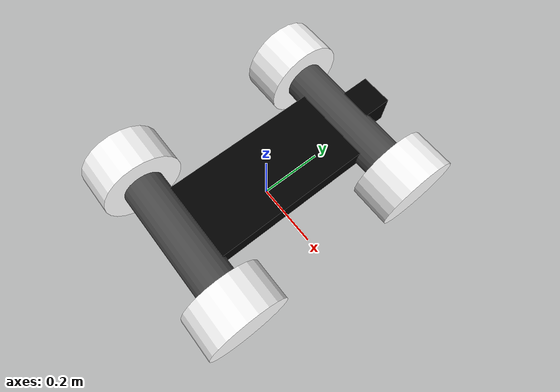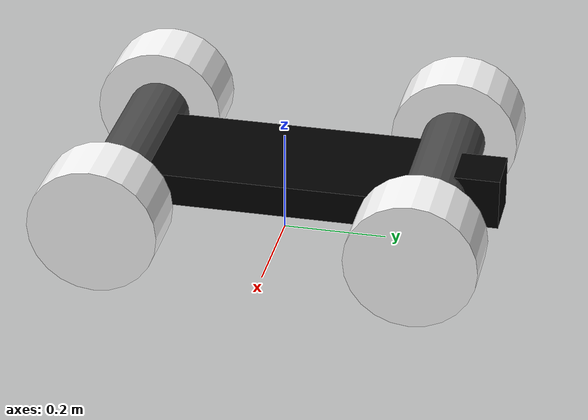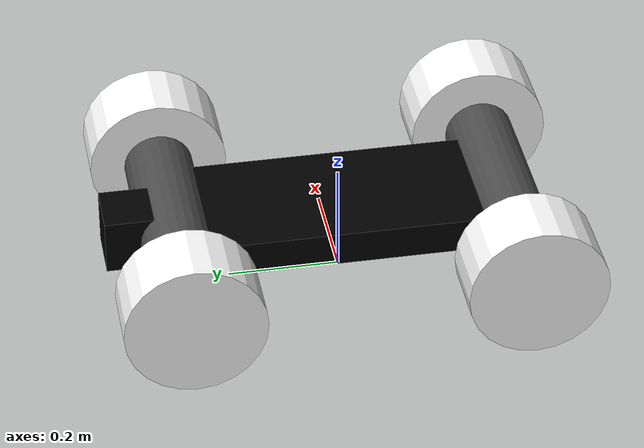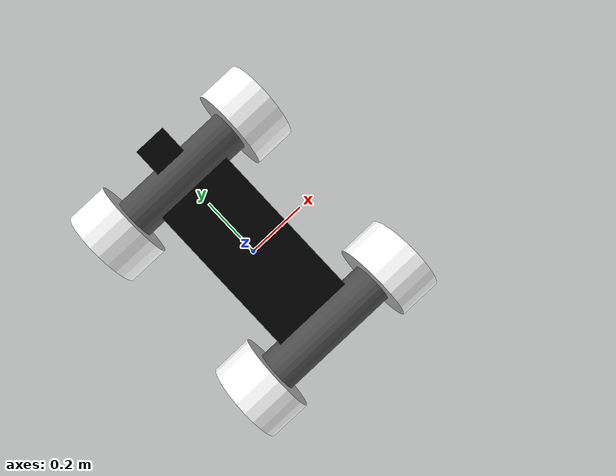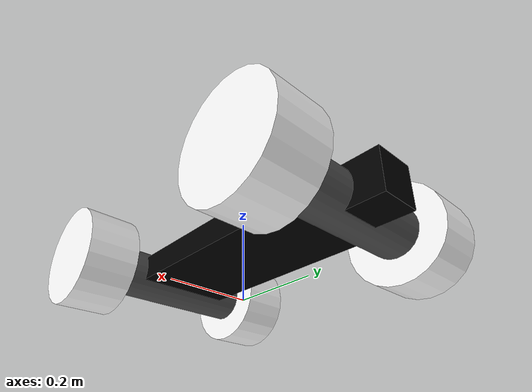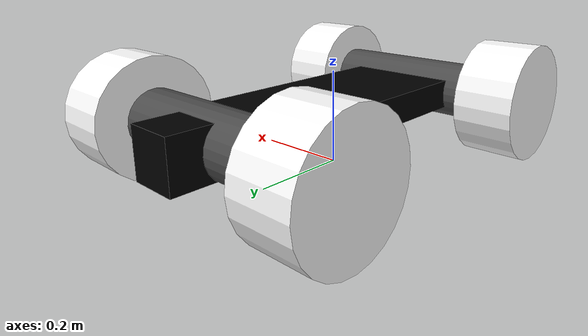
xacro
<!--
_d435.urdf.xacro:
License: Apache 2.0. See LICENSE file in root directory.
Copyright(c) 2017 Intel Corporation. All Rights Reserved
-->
<?xml version="1.0"?>
<robot name="car_model" xmlns:xacro="http://www.ros.org/wiki/xacro">

        <material name="black">
                <color rgba="0 0 0 1"/>
        </material>
        <material name="blue">
                <color rgba="0 0 0.8 1"/>
        </material>
        <material name="white">
                <color rgba="1 1 1 1"/>
        </material>
        <material name="gray">
                <color rgba="0.3 0.3 0.3 1"/>
        </material>

        <xacro:property name="PI" value="3.1415926535897931" />
        <xacro:property name="wheelradius" value="0.125" />
        <xacro:property name="baselength" value="0.5" />
        <xacro:property name="baseheight" value="${wheelradius}" />
        <xacro:property name="axlelength" value="0.4" />
        <xacro:property name="update_rate" value="5.0" />

        <xacro:property name="base_mass" value="1e+0" />
        <xacro:property name="axle_mass" value="1e-1" />
        <xacro:property name="wheel_mass" value="1e+0" />
        <xacro:property name="camera_mass" value="1e-2" />

        <xacro:macro name="gazebo_wheel_elements" >
                <mu1 value="300.0"/>
                <mu2 value="100.0"/>
                <kp value="100000.0" />
                <kd value="1.0" />
                <material>Gazebo/White</material>
        </xacro:macro>

        <xacro:macro name="default_inertial" params="mass">
                <inertial>
                        <mass value="${mass}" />
                        <inertia ixx="${mass*0.01}" ixy="0.0" ixz="0.0" iyy="${mass*0.01}" iyz="0.0" izz="${mass*0.01}" />
                </inertial>
        </xacro:macro>

        <xacro:macro name="world_link">
                <link name="base_footprint">
                        <visual>
                                <geometry>
                                        <box size="0.001 0.001 0.001"/>
                                </geometry>
                                <origin rpy="0 0 0" xyz="0.001 0.001 0.001"/>
                        </visual>
                        <collision>
                                <geometry>
                                        <box size="0.001 0.001 0.001"/>
                                </geometry>
                        </collision>
                        <xacro:default_inertial mass="${base_mass/1000}"/>
                </link>
                <gazebo reference="base_footprint">
                        <material>Gazebo/Green</material>
                </gazebo>
        </xacro:macro>

        <xacro:macro name="car_base">
                <link name="base_link">
                        <visual>
                                <geometry>
                                        <box size="${baselength/2} ${baselength} ${baselength/8}" />
                                </geometry>
                                <material name="black" />
                        </visual>
                        <collision>
                                <geometry>
                                        <box size="${baselength/2} ${baselength} ${baselength/8}" />
                                </geometry>
                        </collision>
                        <xacro:default_inertial mass="${base_mass}"/>
                </link>
                <joint name="base_footprint_joint" type="fixed">
                        <axis xyz="0 0 1" />
                        <parent link="base_footprint" />
                        <child link="base_link" />
                        <origin rpy="0 0 0" xyz="0 0 ${baseheight}" />
                </joint>
                <gazebo reference="base_link">
                        <material>Gazebo/Black</material>
                </gazebo>
        </xacro:macro>

        <xacro:macro name="car_axle" params="frontback position">
               <link name="${frontback}_axle">
                       <visual>
                               <geometry>
                                       <cylinder radius="${baselength/8}" length="${axlelength}" />
                               </geometry>
                               <material name="gray" />
                       </visual>
                       <collision>
                               <geometry>
                                       <cylinder radius="${baselength/8}" length="${axlelength}" />
                               </geometry>
                       </collision>
                       <xacro:default_inertial mass="${axle_mass}"/>
               </link>
               <joint name="${frontback}_axle_to_base" type="fixed">
                       <axis xyz="1 0 0" />
                       <mimic joint="base_footprint_joint" multiplier="1"/>
                       <parent link="base_footprint" />
                       <child link="${frontback}_axle" />
                       <origin rpy="0 -1.57 0" xyz="0 ${position * 0.3} ${baseheight}" />
               </joint>
               <gazebo reference="${frontback}_axle">
                       <material>Gazebo/Grey</material>
               </gazebo>
       </xacro:macro>

        <xacro:macro name="car_wheel" params="frontback leftright fb lr">
                <link name="${frontback}_${leftright}_wheel">
                        <visual>
                                <geometry>
                                        <cylinder radius="${wheelradius}" length="${wheelradius}" />
                                </geometry>
                                <material name="white" />
                        </visual>
                        <collision>
                                <geometry>
                                        <cylinder radius="${wheelradius}" length="${wheelradius}" />
                                </geometry>
                        </collision>
                        <xacro:default_inertial mass="${wheel_mass}"/>
                </link>
                <joint name="${frontback}_${leftright}_wheel_to_${frontback}_axle" type="continuous">
                        <axis xyz="0 0 1" />
                        <parent link="base_footprint" />
                        <child link="${frontback}_${leftright}_wheel" />
                        <origin rpy="0 -1.57 0" xyz="${-lr} ${fb} ${baseheight}" />
                </joint>
                <gazebo reference="${frontback}_${leftright}_wheel">
                        <xacro:gazebo_wheel_elements />
                </gazebo>
        </xacro:macro>

        <xacro:macro name="camera_link" params="height width">
                <link name="camera">
                        <visual>
                                <geometry>
                                        <box size="0.1 0.1 0.1"/>
                                </geometry>
                                <material name="black"/>
                        </visual>
                        <collision>
                                <geometry>
                                        <box size="0.1 0.1 0.1"/>
                                </geometry>
                        </collision>
                        <xacro:default_inertial mass="${camera_mass}"/>
                </link>

                <joint name="camera_joint" type="fixed">
                        <axis xyz="0 0 1" />
                        <origin xyz="0 ${(baselength/2)+(baselength/4)} ${baseheight}" rpy="0 0 1.57"/>
                        <parent link="base_footprint"/>
                        <child link="camera"/>
                </joint>

        </xacro:macro>

        <xacro:include filename="$(find car_model)/urdf/_d435.urdf.xacro" />
        <xacro:sensor_d435 parent="base_footprint">
          <origin xyz="0 ${(baselength/2)+(baselength/4)} ${baseheight}" rpy="0 0 ${PI/2}"/>
        </xacro:sensor_d435>

        <xacro:world_link />
        <xacro:car_base />
        <xacro:camera_link height="480" width="640" />
        <xacro:car_axle frontback="front" position="1" />
        <xacro:car_axle frontback="back" position="-1" />
        <xacro:car_wheel frontback="front" leftright="left" fb="0.3" lr="${(axlelength/2) + 0.05}" />
        <xacro:car_wheel frontback="front" leftright="right" fb="0.3" lr="${-(axlelength/2) - 0.05}" />
        <xacro:car_wheel frontback="back" leftright="left" fb="-0.3" lr="${(axlelength/2) + 0.05}" />
        <xacro:car_wheel frontback="back" leftright="right" fb="-0.3" lr="${-(axlelength/2) - 0.05}" />

        <gazebo>
                <plugin name="skid_steer_drive_controller" filename="libgazebo_ros_skid_steer_drive.so">
                        <broadcastTF>true</broadcastTF>
                        <commandTopic>/cmd_vel</commandTopic>
                        <covariance_x>0.000100</covariance_x>
                        <covariance_y>0.000100</covariance_y>
                        <covariance_yaw>1.57</covariance_yaw>
                        <leftFrontJoint>front_left_wheel_to_front_axle</leftFrontJoint>
                        <leftRearJoint>back_left_wheel_to_back_axle</leftRearJoint>
                        <odometryFrame>odom</odometryFrame>
                        <odometryTopic>/odom</odometryTopic>
                        <rightFrontJoint>front_right_wheel_to_front_axle</rightFrontJoint>
                        <rightRearJoint>back_right_wheel_to_back_axle</rightRearJoint>
                        <robotBaseFrame>base_footprint</robotBaseFrame>
                        <robotNamespace>car_model</robotNamespace>
                        <topicName>/cmd_vel</topicName>
                        <torque>20</torque>
                        <updateRate>100.0</updateRate>
                        <wheelDiameter>${wheelradius * 2}</wheelDiameter>
                        <wheelSeparation>${axlelength}</wheelSeparation>
                </plugin>
                <plugin name="gazebo_ros_control" filename="libgazebo_ros_control.so">
                        <robotNamespace>car_model</robotNamespace>
                </plugin>
        </gazebo>

</robot>

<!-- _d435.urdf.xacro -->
<robot name="sensor_d435" xmlns:xacro="http://ros.org/wiki/xacro">
  <!--File includes-->
  <xacro:include filename="$(find car_model)/urdf/_d435.gazebo.xacro"/>

  <xacro:macro name="sensor_d435" params="name:=depth_camera topics_ns:=depth_camera parent *origin">
    <xacro:property name="M_PI" value="3.1415926535897931" />

    <!-- The following values are approximate, and the camera node
     publishing TF values with actual calibrated camera extrinsic values -->
    <xacro:property name="d435_cam_depth_to_left_ir_offset" value="0.0"/>
    <xacro:property name="d435_cam_depth_to_right_ir_offset" value="-0.050"/>
    <xacro:property name="d435_cam_depth_to_color_offset" value="0.015"/>

    <!-- The following values model the aluminum peripherial case for the
  	D435 camera, with the camera joint represented by the actual
  	peripherial camera tripod mount -->
    <xacro:property name="d435_cam_width" value="0.090"/>
    <xacro:property name="d435_cam_height" value="0.025"/>
    <xacro:property name="d435_cam_depth" value="0.02505"/>
    <xacro:property name="d435_cam_mount_from_center_offset" value="0.0149"/>

    <!-- The following offset is relative the the physical D435 camera peripherial
  	camera tripod mount -->
    <xacro:property name="d435_cam_depth_px" value="${d435_cam_mount_from_center_offset}"/>
    <xacro:property name="d435_cam_depth_py" value="0.0175"/>
    <xacro:property name="d435_cam_depth_pz" value="${d435_cam_height/2}"/>

    <material name="${name}_aluminum">
	  <color rgba="0.5 0.5 0.5 1"/>
    </material>

    <!-- camera body, with origin at bottom screw mount -->
    <joint name="${name}_joint" type="fixed">
      <xacro:insert_block name="origin" />
      <parent link="${parent}"/>
      <child link="${name}_bottom_screw_frame" />
    </joint>
    <link name="${name}_bottom_screw_frame"/>

    <joint name="${name}_link_joint" type="fixed">
      <origin xyz="0 ${d435_cam_depth_py} ${d435_cam_depth_pz}" rpy="0 0 0"/>
      <parent link="${name}_bottom_screw_frame"/>
      <child link="${name}_link" />
    </joint>

    <link name="${name}_link">
      <visual>
      <origin xyz="${d435_cam_mount_from_center_offset} ${-d435_cam_depth_py} 0" rpy="${M_PI/2} 0 ${M_PI/2}"/>
        <geometry>
          <box size="${d435_cam_width} ${d435_cam_height} ${d435_cam_depth}"/>
        </geometry>
        <material name="${name}_aluminum"/>
      </visual>
      <collision>
        <origin xyz="0 ${-d435_cam_depth_py} 0" rpy="0 0 0"/>
        <geometry>
        <box size="${d435_cam_depth} ${d435_cam_width} ${d435_cam_height}"/>
        </geometry>
      </collision>
      <inertial>
        <!-- The following are not reliable values, and should not be used for modeling -->
        <mass value="0.564" />
        <origin xyz="0 0 0" />
        <inertia ixx="0.003881243" ixy="0.0" ixz="0.0" iyy="0.000498940" iyz="0.0" izz="0.003879257" />
      </inertial>
    </link>

    <!-- camera depth joints and links -->
    <joint name="${name}_depth_joint" type="fixed">
      <origin xyz="0 0 0" rpy="0 0 0"/>
      <parent link="${name}_link"/>
      <child link="${name}_depth_frame" />
    </joint>
    <link name="${name}_depth_frame"/>

    <joint name="${name}_depth_optical_joint" type="fixed">
      <origin xyz="0 0 0" rpy="${-M_PI/2} 0 ${-M_PI/2}" />
      <parent link="${name}_depth_frame" />
      <child link="${name}_depth_optical_frame" />
    </joint>
    <link name="${name}_depth_optical_frame"/>

    <!-- camera left IR joints and links -->
    <joint name="${name}_left_ir_joint" type="fixed">
      <origin xyz="0 ${d435_cam_depth_to_left_ir_offset} 0" rpy="0 0 0" />
      <parent link="${name}_depth_frame" />
      <child link="${name}_left_ir_frame" />
    </joint>
    <link name="${name}_left_ir_frame"/>

    <joint name="${name}_left_ir_optical_joint" type="fixed">
      <origin xyz="0 0 0" rpy="${-M_PI/2} 0 ${-M_PI/2}" />
      <parent link="${name}_left_ir_frame" />
      <child link="${name}_left_ir_optical_frame" />
    </joint>
    <link name="${name}_left_ir_optical_frame"/>

    <!-- camera right IR joints and links -->
    <joint name="${name}_right_ir_joint" type="fixed">
      <origin xyz="0 ${d435_cam_depth_to_right_ir_offset} 0" rpy="0 0 0" />
      <parent link="${name}_depth_frame" />
      <child link="${name}_right_ir_frame" />
    </joint>
    <link name="${name}_right_ir_frame"/>

    <joint name="${name}_right_ir_optical_joint" type="fixed">
      <origin xyz="0 0 0" rpy="${-M_PI/2} 0 ${-M_PI/2}" />
      <parent link="${name}_right_ir_frame" />
      <child link="${name}_right_ir_optical_frame" />
    </joint>
    <link name="${name}_right_ir_optical_frame"/>

    <!-- camera color joints and links -->
    <joint name="${name}_color_joint" type="fixed">
      <origin xyz="0 ${d435_cam_depth_to_color_offset} 0" rpy="0 0 0" />
      <parent link="${name}_depth_frame" />
      <child link="${name}_color_frame" />
    </joint>
    <link name="${name}_color_frame"/>

    <joint name="${name}_color_optical_joint" type="fixed">
      <origin xyz="0 0 0" rpy="${-M_PI/2} 0 ${-M_PI/2}" />
      <parent link="${name}_color_frame" />
      <child link="${name}_color_optical_frame" />
    </joint>
    <link name="${name}_color_optical_frame"/>

    <!-- Realsense Gazebo Plugin -->
    <xacro:gazebo_d435 camera_name="${name}" reference_link="${name}_link" topics_ns="${topics_ns}" depth_optical_frame="${name}_depth_optical_frame" color_optical_frame="${name}_color_optical_frame" infrared1_optical_frame="${name}_left_ir_optical_frame" infrared2_optical_frame="${name}_right_ir_optical_frame"/>

  </xacro:macro>
</robot>
